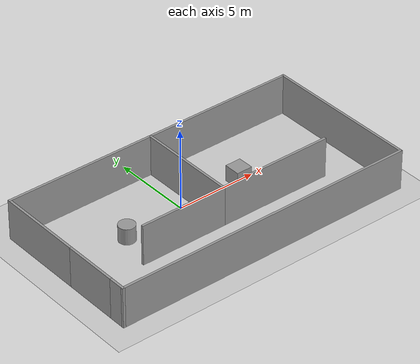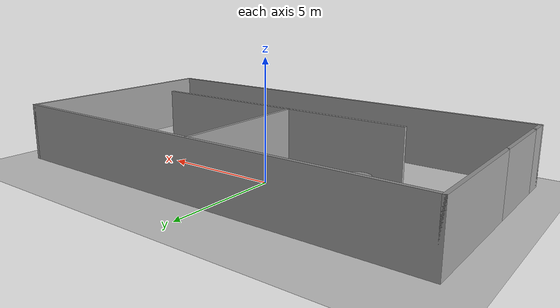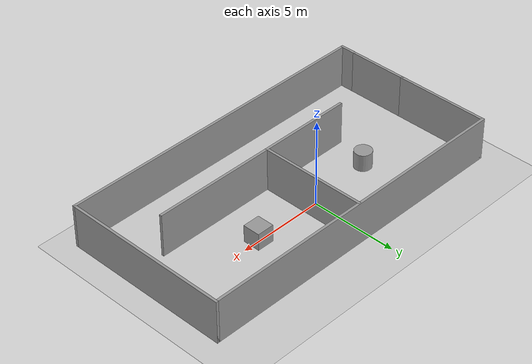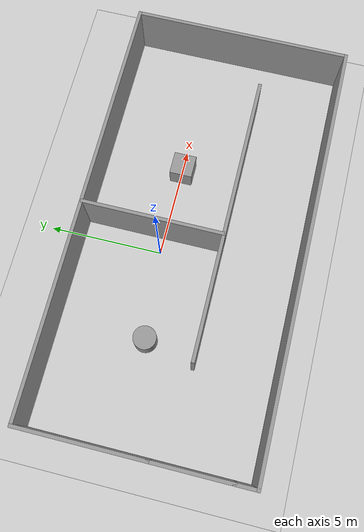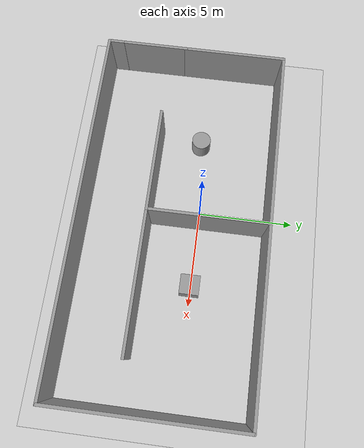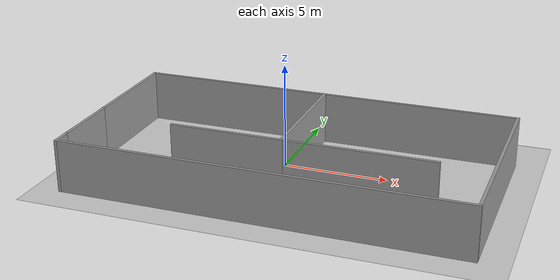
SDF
<sdf version="1.7">
 <world name="default">
  <light name="sun" type="directional">
   <pose>0 0 10 0 -0 0</pose>
   <diffuse>0.8 0.8 0.8 1</diffuse>
   <specular>0.2 0.2 0.2 1</specular>
   <attenuation>
    <range>1000</range>
    <constant>0.9</constant>
    <linear>0.01</linear>
    <quadratic>0.001</quadratic>
   </attenuation>
   <direction>-0.5 0.1 -0.9</direction>
   <spot><inner_angle>0</inner_angle><outer_angle>0</outer_angle><falloff>0</falloff></spot>
  </light>
  <model name="ground_plane">
   <static>1</static>
   <link name="link">
    <collision name="collision">
     <geometry><plane><normal>0 0 1</normal><size>100 100</size></plane></geometry>
     <surface>
      <contact><collide_bitmask>65535</collide_bitmask></contact>
      <friction><ode><mu>100</mu><mu2>50</mu2></ode></friction>
     </surface>
    </collision>
    <visual name="visual">
     <cast_shadows>0</cast_shadows>
     <geometry><plane><normal>0 0 1</normal><size>100 100</size></plane></geometry>
     <material>
      <script><uri>file://media/materials/scripts/gazebo.material</uri><name>Gazebo/Grey</name></script>
     </material>
    </visual>
   </link>
  </model>
  <gravity>0 0 -9.8</gravity>
  <magnetic_field>6e-06 2.3e-05 -4.2e-05</magnetic_field>
  <atmosphere type="adiabatic"/>
  <physics type="ode">
   <max_step_size>0.001</max_step_size>
   <real_time_factor>1</real_time_factor>
   <real_time_update_rate>1000</real_time_update_rate>
  </physics>
  <scene><ambient>0.4 0.4 0.4 1</ambient><background>0.7 0.7 0.7 1</background><shadows>1</shadows></scene>
  <audio><device>default</device></audio>
  <spherical_coordinates>
   <surface_model>EARTH_WGS84</surface_model>
   <latitude_deg>0</latitude_deg>
   <longitude_deg>0</longitude_deg>
   <elevation>0</elevation>
   <heading_deg>0</heading_deg>
  </spherical_coordinates>
  <model name="unit_box">
   <pose>4.01208 -0.043745 0.499995 1e-05 -0 0</pose>
   <link name="link">
    <inertial>
     <mass>1</mass>
     <inertia>
      <ixx>0.166667</ixx>
      <ixy>0</ixy>
      <ixz>0</ixz>
      <iyy>0.166667</iyy>
      <iyz>0</iyz>
      <izz>0.166667</izz>
     </inertia>
    </inertial>
    <collision name="collision"><geometry><box><size>1 1 1</size></box></geometry></collision>
    <visual name="visual">
     <geometry><box><size>1 1 1</size></box></geometry>
     <material>
      <script><name>Gazebo/Grey</name><uri>file://media/materials/scripts/gazebo.material</uri></script>
     </material>
    </visual>
   </link>
  </model>
  <model name="unit_cylinder">
   <pose>-3.9352 -0.377913 0.499997 4e-06 3e-06 -0</pose>
   <link name="link">
    <inertial>
     <mass>1</mass>
     <inertia><ixx>0.145833</ixx><ixy>0</ixy><ixz>0</ixz><iyy>0.145833</iyy><iyz>0</iyz><izz>0.125</izz></inertia>
    </inertial>
    <collision name="collision">
     <geometry><cylinder><radius>0.5</radius><length>1</length></cylinder></geometry>
    </collision>
    <visual name="visual">
     <geometry><cylinder><radius>0.5</radius><length>1</length></cylinder></geometry>
     <material>
      <script><name>Gazebo/Grey</name><uri>file://media/materials/scripts/gazebo.material</uri></script>
     </material>
    </visual>
   </link>
  </model>
  <model name="Harita2">
   <pose>0.850552 -1.26395 0 0 -0 0</pose>
   <link name="Wall_0">
    <collision name="Wall_0_Collision">
     <geometry><box><size>3.5 0.15 2.5</size></box></geometry>
     <pose>0 0 1.25 0 -0 0</pose>
    </collision>
    <visual name="Wall_0_Visual">
     <pose>0 0 1.25 0 -0 0</pose>
     <geometry><box><size>3.5 0.15 2.5</size></box></geometry>
     <material>
      <script><uri>file://media/materials/scripts/gazebo.material</uri><name>Gazebo/Grey</name></script>
      <ambient>1 1 1 1</ambient>
     </material>
     <meta><layer>0</layer></meta>
    </visual>
    <pose>-9.425 -2.225 0 0 -0 1.5708</pose>
   </link>
   <link name="Wall_1">
    <collision name="Wall_1_Collision">
     <geometry><box><size>5.5 0.15 2.5</size></box></geometry>
     <pose>0 0 1.25 0 -0 0</pose>
    </collision>
    <visual name="Wall_1_Visual">
     <pose>0 0 1.25 0 -0 0</pose>
     <geometry><box><size>5.5 0.15 2.5</size></box></geometry>
     <material>
      <script><uri>file://media/materials/scripts/gazebo.material</uri><name>Gazebo/Grey</name></script>
      <ambient>1 1 1 1</ambient>
     </material>
     <meta><layer>0</layer></meta>
    </visual>
    <pose>-9.425 2.125 0 0 -0 1.5708</pose>
   </link>
   <link name="Wall_11">
    <collision name="Wall_11_Collision">
     <geometry><box><size>5.5 0.15 2.5</size></box></geometry>
     <pose>0 0 1.25 0 -0 0</pose>
    </collision>
    <visual name="Wall_11_Visual">
     <pose>0 0 1.25 0 -0 0</pose>
     <geometry><box><size>5.5 0.15 2.5</size></box></geometry>
     <material>
      <script><uri>file://media/materials/scripts/gazebo.material</uri><name>Gazebo/Grey</name></script>
      <ambient>1 1 1 1</ambient>
     </material>
     <meta><layer>0</layer></meta>
    </visual>
    <pose>-2.74658 -1.34069 0 0 -0 3.14159</pose>
   </link>
   <link name="Wall_2">
    <collision name="Wall_2_Collision">
     <geometry><box><size>19 0.15 2.5</size></box></geometry>
     <pose>0 0 1.25 0 -0 0</pose>
    </collision>
    <visual name="Wall_2_Visual">
     <pose>0 0 1.25 0 -0 0</pose>
     <geometry><box><size>19 0.15 2.5</size></box></geometry>
     <material>
      <script><uri>file://media/materials/scripts/gazebo.material</uri><name>Gazebo/Grey</name></script>
      <ambient>1 1 1 1</ambient>
     </material>
     <meta><layer>0</layer></meta>
    </visual>
    <pose>-0 4.8 0 0 -0 0</pose>
   </link>
   <link name="Wall_3">
    <collision name="Wall_3_Collision">
     <geometry><box><size>9.75 0.15 2.5</size></box></geometry>
     <pose>0 0 1.25 0 -0 0</pose>
    </collision>
    <visual name="Wall_3_Visual">
     <pose>0 0 1.25 0 -0 0</pose>
     <geometry><box><size>9.75 0.15 2.5</size></box></geometry>
     <material>
      <script><uri>file://media/materials/scripts/gazebo.material</uri><name>Gazebo/Grey</name></script>
      <ambient>1 1 1 1</ambient>
     </material>
     <meta><layer>0</layer></meta>
    </visual>
    <pose>9.425 0 0 0 -0 -1.5708</pose>
   </link>
   <link name="Wall_4">
    <collision name="Wall_4_Collision">
     <geometry><box><size>19 0.15 2.5</size></box></geometry>
     <pose>0 0 1.25 0 -0 0</pose>
    </collision>
    <visual name="Wall_4_Visual">
     <pose>0 0 1.25 0 -0 0</pose>
     <geometry><box><size>19 0.15 2.5</size></box></geometry>
     <material>
      <script><uri>file://media/materials/scripts/gazebo.material</uri><name>Gazebo/Grey</name></script>
      <ambient>1 1 1 1</ambient>
     </material>
     <meta><layer>0</layer></meta>
    </visual>
    <pose>-0 -4.8 0 0 -0 3.14159</pose>
   </link>
   <link name="Wall_5">
    <collision name="Wall_5_Collision">
     <geometry><box><size>1.05 0.15 2.5</size></box></geometry>
     <pose>0 0 1.25 0 -0 0</pose>
    </collision>
    <visual name="Wall_5_Visual">
     <pose>0 0 1.25 0 -0 0</pose>
     <geometry><box><size>1.05 0.15 2.5</size></box></geometry>
     <material>
      <script><uri>file://media/materials/scripts/gazebo.material</uri><name>Gazebo/Grey</name></script>
      <ambient>1 1 1 1</ambient>
     </material>
     <meta><layer>0</layer></meta>
    </visual>
    <pose>-9.425 -4.35 0 0 -0 1.5708</pose>
   </link>
   <link name="Wall_8">
    <collision name="Wall_8_Collision">
     <geometry><box><size>6.25 0.15 2.5</size></box></geometry>
     <pose>0 0 1.25 0 -0 0</pose>
    </collision>
    <visual name="Wall_8_Visual">
     <pose>0 0 1.25 0 -0 0</pose>
     <geometry><box><size>6.25 0.15 2.5</size></box></geometry>
     <material>
      <script><uri>file://media/materials/scripts/gazebo.material</uri><name>Gazebo/Grey</name></script>
      <ambient>1 1 1 1</ambient>
     </material>
     <meta><layer>0</layer></meta>
    </visual>
    <pose>-0.071582 1.70931 0 0 -0 -1.5708</pose>
   </link>
   <link name="Wall_9">
    <collision name="Wall_9_Collision">
     <geometry><box><size>7.25 0.15 2.5</size></box></geometry>
     <pose>0 0 1.25 0 -0 0</pose>
    </collision>
    <visual name="Wall_9_Visual">
     <pose>0 0 1.25 0 -0 0</pose>
     <geometry><box><size>7.25 0.15 2.5</size></box></geometry>
     <material>
      <script><uri>file://media/materials/scripts/gazebo.material</uri><name>Gazebo/Grey</name></script>
      <ambient>1 1 1 1</ambient>
     </material>
     <meta><layer>0</layer></meta>
    </visual>
    <pose>3.47842 -1.34069 0 0 -0 0</pose>
   </link>
   <static>1</static>
  </model>
 </world>
</sdf>
